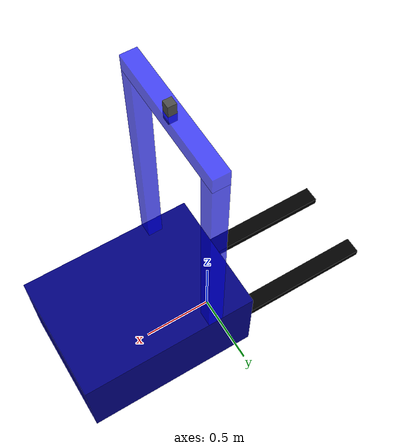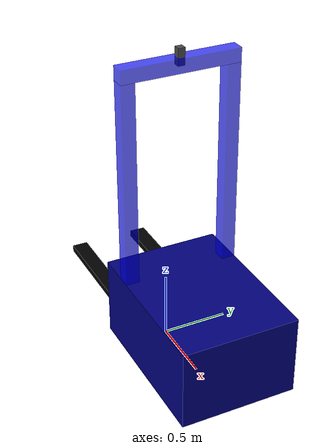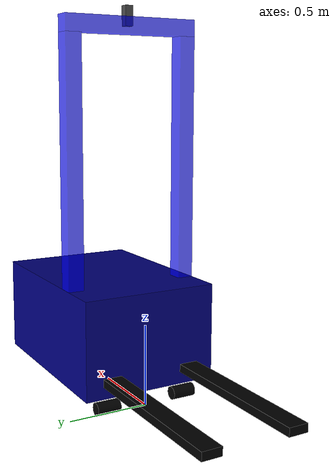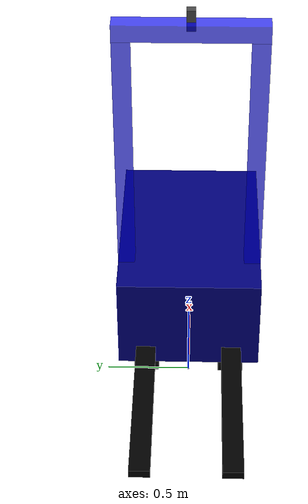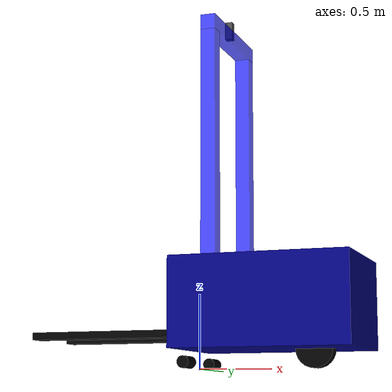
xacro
<?xml version="1.0"?>

<robot
	xmlns:xacro="http://www.ros.org/wiki/xacro"
 	xmlns:sensor="http://playerstage.sourceforge.net/gazebo/xmlschema/#sensor"
    	xmlns:controller="http://playerstage.sourceforge.net/gazebo/xmlschema/#controller"
    	xmlns:interface="http://playerstage.sourceforge.net/gazebo/xmlschema/#interface"
	name="seldat_robot">

	<xacro:property name="length_front_caster" value="0.3" />
	<xacro:property name="radius_front_caster" value="0.05" />

	<xacro:property name="length_front_wheel" value="0.1" />
        <xacro:property name="radius_front_wheel" value="0.125" />

        <xacro:property name="length_mid_caster" value="0.2" />
        <xacro:property name="radius_mid_caster" value="0.03" />

	<xacro:property name="length_caster_wheel" value="0.1" />
        <xacro:property name="radius_caster_wheel" value="0.065" />

	<xacro:property name="length_lift_wheel" value="0.15" />
        <xacro:property name="radius_lift_wheel" value="0.04" />

	<xacro:macro name="default_inertial" params="mass">
               <inertial>
                       <mass value="${mass}" />
                       <inertia ixx="1.0" ixy="0.0" ixz="0.0"
                                iyy="1.0" iyz="0.0"
                                izz="1.0" />
               </inertial>
	</xacro:macro>
	<!--base footprint-->

	<!--base link-->
	<link name="base_link">
   		<visual>
			<geometry>
      				<box size="0.01 0.01 0.01"/>
     			</geometry>
			<origin rpy="0 0 0" xyz="0 0 0"/>
			<material name="blue">
				<color rgba="0 0 1 0.7"/>
			</material>
   		</visual>
		<collision>
			<geometry>
       				<box size="0.01 0.01 0.01"/>
			</geometry>
		</collision>
		<xacro:default_inertial mass="1"/>
 	</link>

	<!--main_body-->
	<link name ="main_body">
		<visual>
			<geometry>
                                <box size="1.2 0.858 0.598"/>
                        </geometry>
                        <origin rpy="0 0 0" xyz="0 0 0"/>
                        <material name="blue">
                                <color rgba="0 0 0.5 1"/>
                        </material>
                </visual>
                <collision>
                        <geometry>
                                <box size="1.2 0.858 0.598"/>
                        </geometry>
                </collision>
                <xacro:default_inertial mass="100"/>
        </link>

        <!--middle frame-->
        <link name ="middle_frame">
                <visual>
                        <geometry>
                                <box size="0.1 0.858 0.1"/>
                        </geometry>
                        <origin rpy="0 0 0" xyz="0 0 0"/>
                        <material name="blue">
                                <color rgba="0 0 1 0.7"/>
                        </material>
                </visual>
                <collision>
                        <geometry>
                                <box size="0.1 0.858 0.1"/>
                        </geometry>
                </collision>
                <xacro:default_inertial mass="20"/>
        </link>

        <!--left_frame-->
        <link name ="left_frame">
                <visual>
                        <geometry>
                                <box size="0.1 0.1 1.5"/>
                        </geometry>
                        <origin rpy="0 0 0" xyz="0 0 0"/>
                        <material name="blue">
                                <color rgba="0 0 1 0.7"/>
                        </material>
                </visual>
                <collision>
                        <geometry>
                                <box size="0.1 0.1 1.5"/>
                        </geometry>
                </collision>
                <xacro:default_inertial mass="20"/>
        </link>

        <!--right_frame-->
        <link name ="right_frame">
                <visual>
                        <geometry>
                                <box size="0.1 0.1 1.5"/>
                        </geometry>
                        <origin rpy="0 0 0" xyz="0 0 0"/>
                        <material name="blue">
                                <color rgba="0 0 1 0.7"/>
                        </material>
                </visual>
                <collision>
                        <geometry>
                                <box size="0.1 0.1 1.5"/>
                        </geometry>
                </collision>
                <xacro:default_inertial mass="20"/>
        </link>

	<!--left lift-->
        <link name="left_lift">
                <visual>
                        <geometry>
                                <box size="1.023 0.12 0.05"/>
                        </geometry>
                        <origin rpy="0 0 0" xyz="0 0 0"/>
                        <material name="red">
                                <color rgba="0 0 0 1"/>
                        </material>
                </visual>
                <collision>
                        <geometry>
                                <box size="1.023 0.12 0.05"/>
                        </geometry>
                </collision>
                <xacro:default_inertial mass="20"/>
        </link>
	<!--right lift-->
        <link name="right_lift">
                <visual>
                        <geometry>
                                <box size="1.023 0.12 0.05"/>
                        </geometry>
                        <origin rpy="0 0 0" xyz="0 0 0"/>
                        <material name="red">
                                <color rgba="0 0 0 1"/>
                        </material>
                </visual>
                <collision>
                        <geometry>
                                <box size="1.023 0.12 0.05"/>
                        </geometry>
                </collision>
                <xacro:default_inertial mass="20"/>
        </link>

        <link name="laser">
                <visual>
                        <geometry>
                                <box size="0.05 0.05 0.12"/>
                        </geometry>
                        <origin rpy="0 0 0" xyz="0 0 0"/>
                        <material name="grey">
                                <color rgba="0.3 0.3 0.3 1"/>
                        </material>
                </visual>
                <collision>
                        <geometry>
                                <box size="0.05 0.05 0.12"/>
                        </geometry>
                </collision>
                <xacro:default_inertial mass="0.5"/>
        </link>

 	<link name="front_caster">
   		<visual>
     			<geometry>
       				<cylinder length="${length_front_caster}" radius="${radius_front_caster}"/>
			</geometry>
			<origin rpy="0 0 0" xyz="0 0 0"/>
   			<material name="green">
				<color rgba="0 1 0 1"/>
			</material>
		</visual>
		<collision>
			<geometry>
       				<cylinder length="${length_front_caster}" radius="${radius_front_caster}"/>
			</geometry>
		</collision>
		<xacro:default_inertial mass="10"/>
 	</link>

 	<link name="front_wheel">
   		<visual>
     			<geometry>
       				<cylinder length="${length_front_wheel}" radius="${radius_front_wheel}"/>
     			</geometry>
			<origin rpy="0 0 0" xyz="0 0 0"/>
   			<material name="black">
				<color rgba="0 0 0 1"/>
			</material>
		</visual>
		<collision>
			<geometry>
       				<cylinder length="${length_front_wheel}" radius="${radius_front_wheel}"/>
			</geometry>
		</collision>
		<xacro:default_inertial mass="10"/>
 	</link>
        <link name="left_wheel">
                <visual>
                        <geometry>
                                <cylinder length="${length_lift_wheel}" radius="${radius_lift_wheel}"/>
                        </geometry>
                        <origin rpy="0 0 0" xyz="0 0 0"/>
                        <material name="black">
                                <color rgba="0 0 0 1"/>
                        </material>
                </visual>
                <collision>
                        <geometry>
                                <cylinder length="${length_lift_wheel}" radius="${radius_lift_wheel}"/>
                        </geometry>
                </collision>
                <xacro:default_inertial mass="10"/>
        </link>

        <link name="right_wheel">
                <visual>
                        <geometry>
                                <cylinder length="${length_lift_wheel}" radius="${radius_lift_wheel}"/>
                        </geometry>
                        <origin rpy="0 0 0" xyz="0 0 0"/>
                        <material name="black">
                                <color rgba="0 0 0 1"/>
                        </material>
                </visual>
                <collision>
                        <geometry>
                                <cylinder length="${length_lift_wheel}" radius="${radius_lift_wheel}"/>
                        </geometry>
                </collision>
                <xacro:default_inertial mass="10"/>
        </link>

	<!-- add 0.4 -->
	<joint name="base_link_main_body" type="fixed">
                <origin xyz="0.525 0 0.424" rpy="0 0 0"/>
                <parent link="base_link" />
                <child link="main_body" />
        </joint>

    	<joint name="main_body_middle_frame" type="fixed">
                <origin xyz="-0.32 0 1.85" rpy="0 0 0"/>
                <parent link="main_body"/>
                <child link="middle_frame"/>
	</joint>

    	<joint name="middle_frame_left_frame" type="fixed">
                <origin xyz="0 0.379 -0.8" rpy="0 0 0"/>
                <parent link="middle_frame"/>
                <child link="left_frame"/>
	</joint>

    	<joint name="middle_frame_right_frame" type="fixed">
                <origin xyz="0 -0.379 -0.8" rpy="0 0 0"/>
                <parent link="middle_frame"/>
                <child link="right_frame"/>
	</joint>

    	<joint name="base_link_laser_link" type="fixed">
                <origin xyz="0.22 0 2.332" rpy="0 0 0"/>
                <parent link="base_link"/>
                <child link="laser"/>
	</joint>

        <joint name="main_body_left_lift" type="fixed">
                <origin xyz="-1.1 0.26 -0.2" rpy="0 0 0"/>
                <parent link="main_body"/>
                <child link="left_lift"/>
        </joint>

        <joint name="main_body_right_lift" type="fixed">
                <origin xyz="-1.1 -0.26 -0.2" rpy="0 0 0"/>
                <parent link="main_body"/>
                <child link="right_lift"/>
        </joint>

 	<joint name="base_link_front_caster" type="continuous">
   		<parent link="base_link"/>
   		<child link="front_caster"/>
   		<origin rpy="0 0 0" xyz="0.8 0 0.275"/>
   		<axis xyz="0 0 1" />
 	</joint>

 	<joint name="front_caster_front_wheel" type="continuous">
   		<axis xyz="0 0 1" />
   	<parent link="front_caster"/>
   		<child link="front_wheel"/>
  		<origin rpy="-1.5707 0 0" xyz="0 0 -0.15"/>
	</joint>
 	<joint name="base_link_left_wheel" type="continuous">
   		<parent link="base_link"/>
   		<axis xyz="0 0 1" />
   		<child link="left_wheel"/>
   		<origin rpy="-1.5707 0 0" xyz="0 0.26 0.04"/>
 	</joint>

        <joint name="base_link_right_wheel" type="continuous">
                <parent link="base_link"/>
                <axis xyz="0 0 1" />
                <child link="right_wheel"/>
                <origin rpy="-1.5707 0 0" xyz="0 -0.26 0.04"/>
        </joint>
</robot>
